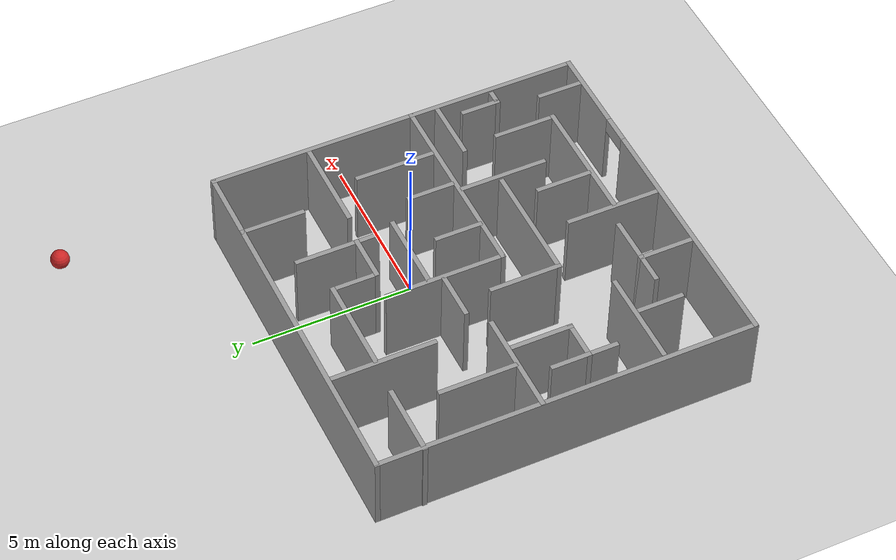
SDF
<sdf version="1.6">
 <world name="default">
  <light name="sun" type="directional">
   <pose>0 0 10 0 -0 0</pose>
   <diffuse>0.8 0.8 0.8 1</diffuse>
   <specular>0.2 0.2 0.2 1</specular>
   <attenuation>
    <range>1000</range>
    <constant>0.9</constant>
    <linear>0.01</linear>
    <quadratic>0.001</quadratic>
   </attenuation>
   <direction>-0.5 0.1 -0.9</direction>
  </light>
  <model name="ground_plane">
   <static>1</static>
   <link name="link">
    <collision name="collision">
     <geometry><plane><normal>0 0 1</normal><size>100 100</size></plane></geometry>
     <surface><friction><ode><mu>100</mu><mu2>50</mu2></ode></friction></surface>
    </collision>
    <visual name="visual">
     <cast_shadows>0</cast_shadows>
     <geometry><plane><normal>0 0 1</normal><size>100 100</size></plane></geometry>
     <material>
      <script><uri>file://media/materials/scripts/gazebo.material</uri><name>Gazebo/Grey</name></script>
     </material>
    </visual>
   </link>
  </model>
  <gravity>0 0 -9.8</gravity>
  <magnetic_field>6e-06 2.3e-05 -4.2e-05</magnetic_field>
  <atmosphere type="adiabatic"/>
  <physics name="default_physics" default="0" type="ode">
   <max_step_size>0.001</max_step_size>
   <real_time_factor>1</real_time_factor>
   <real_time_update_rate>1000</real_time_update_rate>
  </physics>
  <scene><ambient>0.4 0.4 0.4 1</ambient><background>0.7 0.7 0.7 1</background><shadows>1</shadows></scene>
  <audio><device>default</device></audio>
  <spherical_coordinates>
   <surface_model>EARTH_WGS84</surface_model>
   <latitude_deg>0</latitude_deg>
   <longitude_deg>0</longitude_deg>
   <elevation>0</elevation>
   <heading_deg>0</heading_deg>
  </spherical_coordinates>
  <model name="RoboCup SPL Ball">
   <static>0</static>
   <link name="ball">
    <inertial>
     <mass>0.0056</mass>
     <inertia>
      <ixx>2.37e-06</ixx>
      <iyy>2.37e-06</iyy>
      <izz>2.37e-06</izz>
      <ixy>0</ixy>
      <ixz>0</ixz>
      <iyz>0</iyz>
     </inertia>
    </inertial>
    <collision name="collision"><geometry><sphere><radius>0.289568</radius></sphere></geometry></collision>
    <visual name="visual">
     <geometry><sphere><radius>0.289568</radius></sphere></geometry>
     <material>
      <script><uri>file://media/materials/scripts/gazebo.material</uri><name>Gazebo/RedBright</name></script>
     </material>
    </visual>
   </link>
   <pose>5.15164 8.95935 0.289568 0 -0 0</pose>
  </model>
  <model name="mbot">
   <link name="base_footprint">
    <inertial>
     <pose>0.013077 0 0.138462 0 -0 0</pose>
     <mass>1.3</mass>
     <inertia>
      <ixx>0.0360561</ixx>
      <ixy>0</ixy>
      <ixz>-0.00121615</ixz>
      <iyy>0.0387238</iyy>
      <iyz>0</iyz>
      <izz>0.0426727</izz>
     </inertia>
    </inertial>
    <collision name="base_footprint_fixed_joint_lump__base_link_collision">
     <pose>0 0 0.11 0 -0 0</pose>
     <geometry><cylinder><length>0.16</length><radius>0.2</radius></cylinder></geometry>
    </collision>
    <collision name="base_footprint_fixed_joint_lump__camera_link_collision_1">
     <pose>0.17 0 0.21 0 -0 0</pose>
     <geometry><box><size>0.01 0.04 0.04</size></box></geometry>
    </collision>
    <collision name="base_footprint_fixed_joint_lump__pillar_link_collision_2">
     <pose>0 0 0.21 0 -0 0</pose>
     <geometry><cylinder><length>0.1</length><radius>0.01</radius></cylinder></geometry>
    </collision>
    <collision name="base_footprint_fixed_joint_lump__laser_link_collision_3">
     <pose>0 0 0.28 0 -0 0</pose>
     <geometry><cylinder><length>0.06</length><radius>0.05</radius></cylinder></geometry>
    </collision>
    <visual name="base_footprint_visual">
     <geometry><box><size>0.001 0.001 0.001</size></box></geometry>
     <material><script><uri>__default__</uri><name>__default__</name></script></material>
    </visual>
    <visual name="base_footprint_fixed_joint_lump__base_link_visual_1">
     <pose>0 0 0.11 0 -0 0</pose>
     <geometry><cylinder><length>0.16</length><radius>0.2</radius></cylinder></geometry>
     <material>
      <script><name>Gazebo/Blue</name><uri>file://media/materials/scripts/gazebo.material</uri></script>
     </material>
    </visual>
    <visual name="base_footprint_fixed_joint_lump__camera_link_visual_2">
     <pose>0.17 0 0.21 0 -0 0</pose>
     <geometry><box><size>0.01 0.04 0.04</size></box></geometry>
     <material>
      <script><name>Gazebo/Black</name><uri>file://media/materials/scripts/gazebo.material</uri></script>
     </material>
    </visual>
    <visual name="base_footprint_fixed_joint_lump__pillar_link_visual_3">
     <pose>0 0 0.21 0 -0 0</pose>
     <geometry><cylinder><length>0.1</length><radius>0.01</radius></cylinder></geometry>
    </visual>
    <visual name="base_footprint_fixed_joint_lump__laser_link_visual_4">
     <pose>0 0 0.28 0 -0 0</pose>
     <geometry><cylinder><length>0.05</length><radius>0.05</radius></cylinder></geometry>
     <material>
      <script><name>Gazebo/Black</name><uri>file://media/materials/scripts/gazebo.material</uri></script>
     </material>
    </visual>
    <sensor name="camera_node" type="camera">
     <update_rate>20</update_rate>
     <camera name="head">
      <horizontal_fov>1.39626</horizontal_fov>
      <image><width>1280</width><height>720</height><format>R8G8B8</format></image>
      <clip><near>0.02</near><far>300</far></clip>
      <noise><type>gaussian</type><mean>0</mean><stddev>0.007</stddev></noise>
     </camera>
     <plugin name="gazebo_camera" filename="libgazebo_ros_camera.so">
      <alwaysOn>1</alwaysOn>
      <updateRate>0.0</updateRate>
      <cameraName>/camera</cameraName>
      <imageTopicName>image_raw</imageTopicName>
      <cameraInfoTopicName>camera_info</cameraInfoTopicName>
      <frameName>camera_link</frameName>
      <hackBaseline>0.07</hackBaseline>
      <distortionK1>0.0</distortionK1>
      <distortionK2>0.0</distortionK2>
      <distortionK3>0.0</distortionK3>
      <distortionT1>0.0</distortionT1>
      <distortionT2>0.0</distortionT2>
      <robotNamespace>/</robotNamespace>
     </plugin>
     <pose>0.17 0 0.21 0 -0 0</pose>
    </sensor>
    <sensor name="rplidar" type="ray">
     <visualize>0</visualize>
     <update_rate>5.5</update_rate>
     <ray>
      <scan>
       <horizontal>
        <samples>360</samples>
        <resolution>1</resolution>
        <min_angle>-3</min_angle>
        <max_angle>3</max_angle>
       </horizontal>
       <vertical><samples>1</samples><min_angle>0</min_angle><max_angle>0</max_angle></vertical>
      </scan>
      <range><min>0.1</min><max>6</max><resolution>0.01</resolution></range>
      <noise><type>gaussian</type><mean>0</mean><stddev>0.01</stddev></noise>
     </ray>
     <plugin name="gazebo_rplidar" filename="libgazebo_ros_laser.so">
      <topicName>/scan</topicName>
      <frameName>laser_link</frameName>
      <robotNamespace>/</robotNamespace>
     </plugin>
     <pose>0 0 0.28 0 -0 0</pose>
    </sensor>
   </link>
   <link name="back_caster_link">
    <pose>0.18 0 0.015 0 -0 0</pose>
    <inertial>
     <mass>0.2</mass>
     <inertia><ixx>1.8e-05</ixx><ixy>0</ixy><ixz>0</ixz><iyy>1.8e-05</iyy><iyz>0</iyz><izz>1.8e-05</izz></inertia>
    </inertial>
    <collision name="back_caster_link_collision">
     <geometry><sphere><radius>0.015</radius></sphere></geometry>
    </collision>
    <visual name="back_caster_link_visual">
     <geometry><sphere><radius>0.015</radius></sphere></geometry>
     <material>
      <script><name>Gazebo/Black</name><uri>file://media/materials/scripts/gazebo.material</uri></script>
     </material>
    </visual>
   </link>
   <joint name="back_caster_joint" type="revolute">
    <child>back_caster_link</child>
    <parent>base_footprint</parent>
    <axis>
     <xyz>0 1 0</xyz>
     <limit><lower>-1e+16</lower><upper>1e+16</upper></limit>
     <dynamics><spring_reference>0</spring_reference><spring_stiffness>0</spring_stiffness></dynamics>
     <use_parent_model_frame>1</use_parent_model_frame>
    </axis>
   </joint>
   <link name="front_caster_link">
    <pose>-0.18 0 0.015 0 -0 0</pose>
    <inertial>
     <mass>0.2</mass>
     <inertia><ixx>1.8e-05</ixx><ixy>0</ixy><ixz>0</ixz><iyy>1.8e-05</iyy><iyz>0</iyz><izz>1.8e-05</izz></inertia>
    </inertial>
    <collision name="front_caster_link_collision">
     <geometry><sphere><radius>0.015</radius></sphere></geometry>
    </collision>
    <visual name="front_caster_link_visual">
     <geometry><sphere><radius>0.015</radius></sphere></geometry>
     <material>
      <script><name>Gazebo/Black</name><uri>file://media/materials/scripts/gazebo.material</uri></script>
     </material>
    </visual>
   </link>
   <joint name="front_caster_joint" type="revolute">
    <child>front_caster_link</child>
    <parent>base_footprint</parent>
    <axis>
     <xyz>0 1 0</xyz>
     <limit><lower>-1e+16</lower><upper>1e+16</upper></limit>
     <dynamics><spring_reference>0</spring_reference><spring_stiffness>0</spring_stiffness></dynamics>
     <use_parent_model_frame>1</use_parent_model_frame>
    </axis>
   </joint>
   <link name="left_wheel_link">
    <pose>0 0.19 0.06 0 -0 0</pose>
    <inertial>
     <mass>0.2</mass>
     <inertia>
      <ixx>0.000190417</ixx>
      <ixy>0</ixy>
      <ixz>0</ixz>
      <iyy>0.000190417</iyy>
      <iyz>0</iyz>
      <izz>0.00036</izz>
     </inertia>
    </inertial>
    <collision name="left_wheel_link_collision">
     <pose>0 0 0 1.5708 -0 0</pose>
     <geometry><cylinder><length>0.025</length><radius>0.06</radius></cylinder></geometry>
    </collision>
    <visual name="left_wheel_link_visual">
     <pose>0 0 0 1.5708 -0 0</pose>
     <geometry><cylinder><length>0.025</length><radius>0.06</radius></cylinder></geometry>
     <material>
      <script><name>Gazebo/Gray</name><uri>file://media/materials/scripts/gazebo.material</uri></script>
     </material>
    </visual>
   </link>
   <joint name="left_wheel_joint" type="revolute">
    <child>left_wheel_link</child>
    <parent>base_footprint</parent>
    <axis>
     <xyz>0 1 0</xyz>
     <limit><lower>-1e+16</lower><upper>1e+16</upper></limit>
     <dynamics><spring_reference>0</spring_reference><spring_stiffness>0</spring_stiffness></dynamics>
     <use_parent_model_frame>1</use_parent_model_frame>
    </axis>
   </joint>
   <link name="right_wheel_link">
    <pose>0 -0.19 0.06 0 -0 0</pose>
    <inertial>
     <mass>0.2</mass>
     <inertia>
      <ixx>0.000190417</ixx>
      <ixy>0</ixy>
      <ixz>0</ixz>
      <iyy>0.000190417</iyy>
      <iyz>0</iyz>
      <izz>0.00036</izz>
     </inertia>
    </inertial>
    <collision name="right_wheel_link_collision">
     <pose>0 0 0 1.5708 -0 0</pose>
     <geometry><cylinder><length>0.025</length><radius>0.06</radius></cylinder></geometry>
    </collision>
    <visual name="right_wheel_link_visual">
     <pose>0 0 0 1.5708 -0 0</pose>
     <geometry><cylinder><length>0.025</length><radius>0.06</radius></cylinder></geometry>
     <material>
      <script><name>Gazebo/Gray</name><uri>file://media/materials/scripts/gazebo.material</uri></script>
     </material>
    </visual>
   </link>
   <joint name="right_wheel_joint" type="revolute">
    <child>right_wheel_link</child>
    <parent>base_footprint</parent>
    <axis>
     <xyz>0 1 0</xyz>
     <limit><lower>-1e+16</lower><upper>1e+16</upper></limit>
     <dynamics><spring_reference>0</spring_reference><spring_stiffness>0</spring_stiffness></dynamics>
     <use_parent_model_frame>1</use_parent_model_frame>
    </axis>
   </joint>
   <static>0</static>
   <plugin name="differential_drive_controller" filename="libgazebo_ros_diff_drive.so">
    <rosDebugLevel>Debug</rosDebugLevel>
    <publishWheelTF>1</publishWheelTF>
    <robotNamespace>/</robotNamespace>
    <publishTf>1</publishTf>
    <publishWheelJointState>1</publishWheelJointState>
    <alwaysOn>1</alwaysOn>
    <updateRate>100.0</updateRate>
    <legacyMode>1</legacyMode>
    <leftJoint>left_wheel_joint</leftJoint>
    <rightJoint>right_wheel_joint</rightJoint>
    <wheelSeparation>0.38</wheelSeparation>
    <wheelDiameter>0.12</wheelDiameter>
    <broadcastTF>1</broadcastTF>
    <wheelTorque>30</wheelTorque>
    <wheelAcceleration>1.8</wheelAcceleration>
    <commandTopic>cmd_vel</commandTopic>
    <odometryFrame>odom</odometryFrame>
    <odometryTopic>odom</odometryTopic>
    <robotBaseFrame>base_footprint</robotBaseFrame>
   </plugin>
   <pose>0.005434 0.005912 -6e-06 2.9e-05 1e-06 0.002572</pose>
  </model>
  <model name="migong">
   <pose>-1.49161 -1.44 0 0 -0 0</pose>
   <link name="Wall_100">
    <collision name="Wall_100_Collision">
     <geometry><box><size>1.5 0.15 2.5</size></box></geometry>
     <pose>0 0 1.25 0 -0 0</pose>
    </collision>
    <visual name="Wall_100_Visual">
     <pose>0 0 1.25 0 -0 0</pose>
     <geometry><box><size>1.5 0.15 2.5</size></box></geometry>
     <material>
      <script><uri>file://media/materials/scripts/gazebo.material</uri><name>Gazebo/Grey</name></script>
      <ambient>1 1 1 1</ambient>
     </material>
     <meta><layer>0</layer></meta>
    </visual>
    <pose>0.950852 0.184929 0 0 -0 1.5708</pose>
   </link>
   <link name="Wall_102">
    <collision name="Wall_102_Collision">
     <geometry><box><size>1.5 0.15 2.5</size></box></geometry>
     <pose>0 0 1.25 0 -0 0</pose>
    </collision>
    <visual name="Wall_102_Visual">
     <pose>0 0 1.25 0 -0 0</pose>
     <geometry><box><size>1.5 0.15 2.5</size></box></geometry>
     <material>
      <script><uri>file://media/materials/scripts/gazebo.material</uri><name>Gazebo/Grey</name></script>
      <ambient>1 1 1 1</ambient>
     </material>
     <meta><layer>0</layer></meta>
    </visual>
    <pose>-1.19244 1.32015 0 0 -0 3.14159</pose>
   </link>
   <link name="Wall_104">
    <collision name="Wall_104_Collision">
     <geometry><box><size>1.75 0.15 2.5</size></box></geometry>
     <pose>0 0 1.25 0 -0 0</pose>
    </collision>
    <visual name="Wall_104_Visual">
     <pose>0 0 1.25 0 -0 0</pose>
     <geometry><box><size>1.75 0.15 2.5</size></box></geometry>
     <material>
      <script><uri>file://media/materials/scripts/gazebo.material</uri><name>Gazebo/Grey</name></script>
      <ambient>1 1 1 1</ambient>
     </material>
     <meta><layer>0</layer></meta>
    </visual>
    <pose>1.42583 -3.4373 0 0 -0 1.5708</pose>
   </link>
   <link name="Wall_15">
    <pose>0.016606 -5.8 0 0 -0 0</pose>
    <visual name="Wall_15_Visual_0">
     <pose>-1.78008 0 1.25 0 -0 0</pose>
     <geometry><box><size>7.93985 0.15 2.5</size></box></geometry>
     <material>
      <script><uri>file://media/materials/scripts/gazebo.material</uri><name>Gazebo/Grey</name></script>
      <ambient>1 1 1 1</ambient>
     </material>
     <meta><layer>0</layer></meta>
    </visual>
    <collision name="Wall_15_Collision_0">
     <geometry><box><size>7.93985 0.15 2.5</size></box></geometry>
     <pose>-1.78008 0 1.25 0 -0 0</pose>
    </collision>
    <visual name="Wall_15_Visual_1">
     <pose>4.41992 0 1.25 0 -0 0</pose>
     <geometry><box><size>2.66015 0.15 2.5</size></box></geometry>
     <material>
      <script><uri>file://media/materials/scripts/gazebo.material</uri><name>Gazebo/Grey</name></script>
      <ambient>1 1 1 1</ambient>
     </material>
     <meta><layer>0</layer></meta>
    </visual>
    <collision name="Wall_15_Collision_1">
     <geometry><box><size>2.66015 0.15 2.5</size></box></geometry>
     <pose>4.41992 0 1.25 0 -0 0</pose>
    </collision>
    <visual name="Wall_15_Visual_2">
     <pose>2.63985 0 2.25 0 -0 0</pose>
     <geometry><box><size>0.9 0.15 0.5</size></box></geometry>
     <material>
      <script><uri>file://media/materials/scripts/gazebo.material</uri><name>Gazebo/Grey</name></script>
      <ambient>1 1 1 1</ambient>
     </material>
     <meta><layer>0</layer></meta>
    </visual>
    <collision name="Wall_15_Collision_2">
     <geometry><box><size>0.9 0.15 0.5</size></box></geometry>
     <pose>2.63985 0 2.25 0 -0 0</pose>
    </collision>
   </link>
   <link name="Wall_16">
    <collision name="Wall_16_Collision">
     <geometry><box><size>5.4 0.15 2.5</size></box></geometry>
     <pose>0 0 1.25 0 -0 0</pose>
    </collision>
    <visual name="Wall_16_Visual">
     <pose>0 0 1.25 0 -0 0</pose>
     <geometry><box><size>5.4 0.15 2.5</size></box></geometry>
     <material>
      <script><uri>file://media/materials/scripts/gazebo.material</uri><name>Gazebo/Grey</name></script>
      <ambient>1 1 1 1</ambient>
     </material>
     <meta><layer>0</layer></meta>
    </visual>
    <pose>5.69161 -3.175 0 0 -0 1.5708</pose>
   </link>
   <link name="Wall_18">
    <collision name="Wall_18_Collision">
     <geometry><box><size>3.75 0.15 2.5</size></box></geometry>
     <pose>0 0 1.25 0 -0 0</pose>
    </collision>
    <visual name="Wall_18_Visual">
     <pose>0 0 1.25 0 -0 0</pose>
     <geometry><box><size>3.75 0.15 2.5</size></box></geometry>
     <material>
      <script><uri>file://media/materials/scripts/gazebo.material</uri><name>Gazebo/Grey</name></script>
      <ambient>1 1 1 1</ambient>
     </material>
     <meta><layer>0</layer></meta>
    </visual>
    <pose>-0.408394 1.25 0 0 -0 1.5708</pose>
   </link>
   <link name="Wall_20">
    <collision name="Wall_20_Collision">
     <geometry><box><size>2.75 0.15 2.5</size></box></geometry>
     <pose>0 0 1.25 0 -0 0</pose>
    </collision>
    <visual name="Wall_20_Visual">
     <pose>0 0 1.25 0 -0 0</pose>
     <geometry><box><size>2.75 0.15 2.5</size></box></geometry>
     <material>
      <script><uri>file://media/materials/scripts/gazebo.material</uri><name>Gazebo/Grey</name></script>
      <ambient>1 1 1 1</ambient>
     </material>
     <meta><layer>0</layer></meta>
    </visual>
    <pose>2.3936 -1.9586 0 0 -0 -1.5708</pose>
   </link>
   <link name="Wall_25">
    <collision name="Wall_25_Collision">
     <geometry><box><size>2.5 0.15 2.5</size></box></geometry>
     <pose>0 0 1.25 0 -0 0</pose>
    </collision>
    <visual name="Wall_25_Visual">
     <pose>0 0 1.25 0 -0 0</pose>
     <geometry><box><size>2.5 0.15 2.5</size></box></geometry>
     <material>
      <script><uri>file://media/materials/scripts/gazebo.material</uri><name>Gazebo/Grey</name></script>
      <ambient>1 1 1 1</ambient>
     </material>
     <meta><layer>0</layer></meta>
    </visual>
    <pose>0.841365 1.75372 0 0 -0 0</pose>
   </link>
   <link name="Wall_29">
    <collision name="Wall_29_Collision">
     <geometry><box><size>2 0.15 2.5</size></box></geometry>
     <pose>0 0 1.25 0 -0 0</pose>
    </collision>
    <visual name="Wall_29_Visual">
     <pose>0 0 1.25 0 -0 0</pose>
     <geometry><box><size>2 0.15 2.5</size></box></geometry>
     <material>
      <script><uri>file://media/materials/scripts/gazebo.material</uri><name>Gazebo/Grey</name></script>
      <ambient>1 1 1 1</ambient>
     </material>
     <meta><layer>0</layer></meta>
    </visual>
    <pose>3.51742 4.86499 0 0 -0 -1.5708</pose>
   </link>
   <link name="Wall_3">
    <collision name="Wall_3_Collision">
     <geometry><box><size>6.25 0.15 2.5</size></box></geometry>
     <pose>0 0 1.25 0 -0 0</pose>
    </collision>
    <visual name="Wall_3_Visual">
     <pose>0 0 1.25 0 -0 0</pose>
     <geometry><box><size>6.25 0.15 2.5</size></box></geometry>
     <material>
      <script><uri>file://media/materials/scripts/gazebo.material</uri><name>Gazebo/Grey</name></script>
      <ambient>1 1 1 1</ambient>
     </material>
     <meta><layer>0</layer></meta>
    </visual>
    <pose>2.64161 -0.55 0 0 -0 0</pose>
   </link>
   <link name="Wall_31">
    <collision name="Wall_31_Collision">
     <geometry><box><size>3.25 0.15 2.5</size></box></geometry>
     <pose>0 0 1.25 0 -0 0</pose>
    </collision>
    <visual name="Wall_31_Visual">
     <pose>0 0 1.25 0 -0 0</pose>
     <geometry><box><size>3.25 0.15 2.5</size></box></geometry>
     <material>
      <script><uri>file://media/materials/scripts/gazebo.material</uri><name>Gazebo/Grey</name></script>
      <ambient>1 1 1 1</ambient>
     </material>
     <meta><layer>0</layer></meta>
    </visual>
    <pose>-4.08756 0.830504 0 0 -0 0</pose>
   </link>
   <link name="Wall_33">
    <collision name="Wall_33_Collision">
     <geometry><box><size>3.25 0.15 2.5</size></box></geometry>
     <pose>0 0 1.25 0 -0 0</pose>
    </collision>
    <visual name="Wall_33_Visual">
     <pose>0 0 1.25 0 -0 0</pose>
     <geometry><box><size>3.25 0.15 2.5</size></box></geometry>
     <material>
      <script><uri>file://media/materials/scripts/gazebo.material</uri><name>Gazebo/Grey</name></script>
      <ambient>1 1 1 1</ambient>
     </material>
     <meta><layer>0</layer></meta>
    </visual>
    <pose>-2.47393 4.11899 0 0 -0 -1.5708</pose>
   </link>
   <link name="Wall_35">
    <collision name="Wall_35_Collision">
     <geometry><box><size>3 0.15 2.5</size></box></geometry>
     <pose>0 0 1.25 0 -0 0</pose>
    </collision>
    <visual name="Wall_35_Visual">
     <pose>0 0 1.25 0 -0 0</pose>
     <geometry><box><size>3 0.15 2.5</size></box></geometry>
     <material>
      <script><uri>file://media/materials/scripts/gazebo.material</uri><name>Gazebo/Grey</name></script>
      <ambient>1 1 1 1</ambient>
     </material>
     <meta><layer>0</layer></meta>
    </visual>
    <pose>-4.07299 -2.98446 0 0 -0 0</pose>
   </link>
   <link name="Wall_37">
    <collision name="Wall_37_Collision">
     <geometry><box><size>2.5 0.15 2.5</size></box></geometry>
     <pose>0 0 1.25 0 -0 0</pose>
    </collision>
    <visual name="Wall_37_Visual">
     <pose>0 0 1.25 0 -0 0</pose>
     <geometry><box><size>2.5 0.15 2.5</size></box></geometry>
     <material>
      <script><uri>file://media/materials/scripts/gazebo.material</uri><name>Gazebo/Grey</name></script>
      <ambient>1 1 1 1</ambient>
     </material>
     <meta><layer>0</layer></meta>
    </visual>
    <pose>-4.14879 2.0055 0 0 -0 1.5708</pose>
   </link>
   <link name="Wall_39">
    <collision name="Wall_39_Collision">
     <geometry><box><size>3 0.15 2.5</size></box></geometry>
     <pose>0 0 1.25 0 -0 0</pose>
    </collision>
    <visual name="Wall_39_Visual">
     <pose>0 0 1.25 0 -0 0</pose>
     <geometry><box><size>3 0.15 2.5</size></box></geometry>
     <material>
      <script><uri>file://media/materials/scripts/gazebo.material</uri><name>Gazebo/Grey</name></script>
      <ambient>1 1 1 1</ambient>
     </material>
     <meta><layer>0</layer></meta>
    </visual>
    <pose>-0.054688 -4.30437 0 0 -0 1.5708</pose>
   </link>
   <link name="Wall_4">
    <collision name="Wall_4_Collision">
     <geometry><box><size>6.5 0.15 2.5</size></box></geometry>
     <pose>0 0 1.25 0 -0 0</pose>
    </collision>
    <visual name="Wall_4_Visual">
     <pose>0 0 1.25 0 -0 0</pose>
     <geometry><box><size>6.5 0.15 2.5</size></box></geometry>
     <material>
      <script><uri>file://media/materials/scripts/gazebo.material</uri><name>Gazebo/Grey</name></script>
      <ambient>1 1 1 1</ambient>
     </material>
     <meta><layer>0</layer></meta>
    </visual>
    <pose>5.69161 2.625 0 0 -0 1.5708</pose>
   </link>
   <link name="Wall_41">
    <collision name="Wall_41_Collision">
     <geometry><box><size>3.75 0.15 2.5</size></box></geometry>
     <pose>0 0 1.25 0 -0 0</pose>
    </collision>
    <visual name="Wall_41_Visual">
     <pose>0 0 1.25 0 -0 0</pose>
     <geometry><box><size>3.75 0.15 2.5</size></box></geometry>
     <material>
      <script><uri>file://media/materials/scripts/gazebo.material</uri><name>Gazebo/Grey</name></script>
      <ambient>1 1 1 1</ambient>
     </material>
     <meta><layer>0</layer></meta>
    </visual>
    <pose>0.37846 -1.82136 0 0 -0 3.14159</pose>
   </link>
   <link name="Wall_42">
    <collision name="Wall_42_Collision">
     <geometry><box><size>2.25 0.15 2.5</size></box></geometry>
     <pose>0 0 1.25 0 -0 0</pose>
    </collision>
    <visual name="Wall_42_Visual">
     <pose>0 0 1.25 0 -0 0</pose>
     <geometry><box><size>2.25 0.15 2.5</size></box></geometry>
     <material>
      <script><uri>file://media/materials/scripts/gazebo.material</uri><name>Gazebo/Grey</name></script>
      <ambient>1 1 1 1</ambient>
     </material>
     <meta><layer>0</layer></meta>
    </visual>
    <pose>-1.42154 -0.771359 0 0 -0 1.5708</pose>
   </link>
   <link name="Wall_44">
    <collision name="Wall_44_Collision">
     <geometry><box><size>4 0.15 2.5</size></box></geometry>
     <pose>0 0 1.25 0 -0 0</pose>
    </collision>
    <visual name="Wall_44_Visual">
     <pose>0 0 1.25 0 -0 0</pose>
     <geometry><box><size>4 0.15 2.5</size></box></geometry>
     <material>
      <script><uri>file://media/materials/scripts/gazebo.material</uri><name>Gazebo/Grey</name></script>
      <ambient>1 1 1 1</ambient>
     </material>
     <meta><layer>0</layer></meta>
    </visual>
    <pose>1.96577 -4.34396 0 0 -0 0</pose>
   </link>
   <link name="Wall_45">
    <collision name="Wall_45_Collision">
     <geometry><box><size>2 0.15 2.5</size></box></geometry>
     <pose>0 0 1.25 0 -0 0</pose>
    </collision>
    <visual name="Wall_45_Visual">
     <pose>0 0 1.25 0 -0 0</pose>
     <geometry><box><size>2 0.15 2.5</size></box></geometry>
     <material>
      <script><uri>file://media/materials/scripts/gazebo.material</uri><name>Gazebo/Grey</name></script>
      <ambient>1 1 1 1</ambient>
     </material>
     <meta><layer>0</layer></meta>
    </visual>
    <pose>3.89077 -3.41896 0 0 -0 1.5708</pose>
   </link>
   <link name="Wall_52">
    <collision name="Wall_52_Collision">
     <geometry><box><size>1.5 0.15 2.5</size></box></geometry>
     <pose>0 0 1.25 0 -0 0</pose>
    </collision>
    <visual name="Wall_52_Visual">
     <pose>0 0 1.25 0 -0 0</pose>
     <geometry><box><size>1.5 0.15 2.5</size></box></geometry>
     <material>
      <script><uri>file://media/materials/scripts/gazebo.material</uri><name>Gazebo/Grey</name></script>
      <ambient>1 1 1 1</ambient>
     </material>
     <meta><layer>0</layer></meta>
    </visual>
    <pose>-3.84477 -3.76819 0 0 -0 -1.5708</pose>
   </link>
   <link name="Wall_55">
    <collision name="Wall_55_Collision">
     <geometry><box><size>3 0.15 2.5</size></box></geometry>
     <pose>0 0 1.25 0 -0 0</pose>
    </collision>
    <visual name="Wall_55_Visual">
     <pose>0 0 1.25 0 -0 0</pose>
     <geometry><box><size>3 0.15 2.5</size></box></geometry>
     <material>
      <script><uri>file://media/materials/scripts/gazebo.material</uri><name>Gazebo/Grey</name></script>
      <ambient>1 1 1 1</ambient>
     </material>
     <meta><layer>0</layer></meta>
    </visual>
    <pose>-0.966836 4.33549 0 0 -0 0</pose>
   </link>
   <link name="Wall_56">
    <collision name="Wall_56_Collision">
     <geometry><box><size>1.5 0.15 2.5</size></box></geometry>
     <pose>0 0 1.25 0 -0 0</pose>
    </collision>
    <visual name="Wall_56_Visual">
     <pose>0 0 1.25 0 -0 0</pose>
     <geometry><box><size>1.5 0.15 2.5</size></box></geometry>
     <material>
      <script><uri>file://media/materials/scripts/gazebo.material</uri><name>Gazebo/Grey</name></script>
      <ambient>1 1 1 1</ambient>
     </material>
     <meta><layer>0</layer></meta>
    </visual>
    <pose>0.458164 3.66048 0 0 -0 -1.5708</pose>
   </link>
   <link name="Wall_57">
    <collision name="Wall_57_Collision">
     <geometry><box><size>1.5 0.15 2.5</size></box></geometry>
     <pose>0 0 1.25 0 -0 0</pose>
    </collision>
    <visual name="Wall_57_Visual">
     <pose>0 0 1.25 0 -0 0</pose>
     <geometry><box><size>1.5 0.15 2.5</size></box></geometry>
     <material>
      <script><uri>file://media/materials/scripts/gazebo.material</uri><name>Gazebo/Grey</name></script>
      <ambient>1 1 1 1</ambient>
     </material>
     <meta><layer>0</layer></meta>
    </visual>
    <pose>1.13316 2.98548 0 0 -0 0</pose>
   </link>
   <link name="Wall_59">
    <collision name="Wall_59_Collision">
     <geometry><box><size>2.5 0.15 2.5</size></box></geometry>
     <pose>0 0 1.25 0 -0 0</pose>
    </collision>
    <visual name="Wall_59_Visual">
     <pose>0 0 1.25 0 -0 0</pose>
     <geometry><box><size>2.5 0.15 2.5</size></box></geometry>
     <material>
      <script><uri>file://media/materials/scripts/gazebo.material</uri><name>Gazebo/Grey</name></script>
      <ambient>1 1 1 1</ambient>
     </material>
     <meta><layer>0</layer></meta>
    </visual>
    <pose>4.04588 0.761351 0 0 -0 1.5708</pose>
   </link>
   <link name="Wall_61">
    <collision name="Wall_61_Collision">
     <geometry><box><size>2 0.15 2.5</size></box></geometry>
     <pose>0 0 1.25 0 -0 0</pose>
    </collision>
    <visual name="Wall_61_Visual">
     <pose>0 0 1.25 0 -0 0</pose>
     <geometry><box><size>2 0.15 2.5</size></box></geometry>
     <material>
      <script><uri>file://media/materials/scripts/gazebo.material</uri><name>Gazebo/Grey</name></script>
      <ambient>1 1 1 1</ambient>
     </material>
     <meta><layer>0</layer></meta>
    </visual>
    <pose>-3.55274 -0.177749 0 0 -0 -1.5708</pose>
   </link>
   <link name="Wall_62">
    <collision name="Wall_62_Collision">
     <geometry><box><size>1.25 0.15 2.5</size></box></geometry>
     <pose>0 0 1.25 0 -0 0</pose>
    </collision>
    <visual name="Wall_62_Visual">
     <pose>0 0 1.25 0 -0 0</pose>
     <geometry><box><size>1.25 0.15 2.5</size></box></geometry>
     <material>
      <script><uri>file://media/materials/scripts/gazebo.material</uri><name>Gazebo/Grey</name></script>
      <ambient>1 1 1 1</ambient>
     </material>
     <meta><layer>0</layer></meta>
    </visual>
    <pose>-4.10274 -1.10275 0 0 -0 3.14159</pose>
   </link>
   <link name="Wall_64">
    <collision name="Wall_64_Collision">
     <geometry><box><size>1 0.15 2.5</size></box></geometry>
     <pose>0 0 1.25 0 -0 0</pose>
    </collision>
    <visual name="Wall_64_Visual">
     <pose>0 0 1.25 0 -0 0</pose>
     <geometry><box><size>1 0.15 2.5</size></box></geometry>
     <material>
      <script><uri>file://media/materials/scripts/gazebo.material</uri><name>Gazebo/Grey</name></script>
      <ambient>1 1 1 1</ambient>
     </material>
     <meta><layer>0</layer></meta>
    </visual>
    <pose>-4.65273 -1.52775 0 0 -0 -1.5708</pose>
   </link>
   <link name="Wall_66">
    <collision name="Wall_66_Collision">
     <geometry><box><size>1.25 0.15 2.5</size></box></geometry>
     <pose>0 0 1.25 0 -0 0</pose>
    </collision>
    <visual name="Wall_66_Visual">
     <pose>0 0 1.25 0 -0 0</pose>
     <geometry><box><size>1.25 0.15 2.5</size></box></geometry>
     <material>
      <script><uri>file://media/materials/scripts/gazebo.material</uri><name>Gazebo/Grey</name></script>
      <ambient>1 1 1 1</ambient>
     </material>
     <meta><layer>0</layer></meta>
    </visual>
    <pose>-4.65273 -0.552749 0 0 -0 1.5708</pose>
   </link>
   <link name="Wall_70">
    <collision name="Wall_70_Collision">
     <geometry><box><size>2.25 0.15 2.5</size></box></geometry>
     <pose>0 0 1.25 0 -0 0</pose>
    </collision>
    <visual name="Wall_70_Visual">
     <pose>0 0 1.25 0 -0 0</pose>
     <geometry><box><size>2.25 0.15 2.5</size></box></geometry>
     <material>
      <script><uri>file://media/materials/scripts/gazebo.material</uri><name>Gazebo/Grey</name></script>
      <ambient>1 1 1 1</ambient>
     </material>
     <meta><layer>0</layer></meta>
    </visual>
    <pose>-4.64161 4.39496 0 0 -0 0</pose>
   </link>
   <link name="Wall_72">
    <collision name="Wall_72_Collision">
     <geometry><box><size>1.75 0.15 2.5</size></box></geometry>
     <pose>0 0 1.25 0 -0 0</pose>
    </collision>
    <visual name="Wall_72_Visual">
     <pose>0 0 1.25 0 -0 0</pose>
     <geometry><box><size>1.75 0.15 2.5</size></box></geometry>
     <material>
      <script><uri>file://media/materials/scripts/gazebo.material</uri><name>Gazebo/Grey</name></script>
      <ambient>1 1 1 1</ambient>
     </material>
     <meta><layer>0</layer></meta>
    </visual>
    <pose>-2.11864 -4.90272 0 0 -0 1.5708</pose>
   </link>
   <link name="Wall_75">
    <collision name="Wall_75_Collision">
     <geometry><box><size>1.5 0.15 2.5</size></box></geometry>
     <pose>0 0 1.25 0 -0 0</pose>
    </collision>
    <visual name="Wall_75_Visual">
     <pose>0 0 1.25 0 -0 0</pose>
     <geometry><box><size>1.5 0.15 2.5</size></box></geometry>
     <material>
      <script><uri>file://media/materials/scripts/gazebo.material</uri><name>Gazebo/Grey</name></script>
      <ambient>1 1 1 1</ambient>
     </material>
     <meta><layer>0</layer></meta>
    </visual>
    <pose>-1.44364 -4.10272 0 0 -0 0</pose>
   </link>
   <link name="Wall_77">
    <collision name="Wall_77_Collision">
     <geometry><box><size>1 0.15 2.5</size></box></geometry>
     <pose>0 0 1.25 0 -0 0</pose>
    </collision>
    <visual name="Wall_77_Visual">
     <pose>0 0 1.25 0 -0 0</pose>
     <geometry><box><size>1 0.15 2.5</size></box></geometry>
     <material>
      <script><uri>file://media/materials/scripts/gazebo.material</uri><name>Gazebo/Grey</name></script>
      <ambient>1 1 1 1</ambient>
     </material>
     <meta><layer>0</layer></meta>
    </visual>
    <pose>-2.54364 -4.10272 0 0 -0 3.14159</pose>
   </link>
   <link name="Wall_8">
    <collision name="Wall_8_Collision">
     <geometry><box><size>11.5 0.15 2.5</size></box></geometry>
     <pose>0 0 1.25 0 -0 0</pose>
    </collision>
    <visual name="Wall_8_Visual">
     <pose>0 0 1.25 0 -0 0</pose>
     <geometry><box><size>11.5 0.15 2.5</size></box></geometry>
     <material>
      <script><uri>file://media/materials/scripts/gazebo.material</uri><name>Gazebo/Grey</name></script>
      <ambient>1 1 1 1</ambient>
     </material>
     <meta><layer>0</layer></meta>
    </visual>
    <pose>0.016606 5.8 0 0 -0 3.14159</pose>
   </link>
   <link name="Wall_80">
    <collision name="Wall_80_Collision">
     <geometry><box><size>2 0.15 2.5</size></box></geometry>
     <pose>0 0 1.25 0 -0 0</pose>
    </collision>
    <visual name="Wall_80_Visual">
     <pose>0 0 1.25 0 -0 0</pose>
     <geometry><box><size>2 0.15 2.5</size></box></geometry>
     <material>
      <script><uri>file://media/materials/scripts/gazebo.material</uri><name>Gazebo/Grey</name></script>
      <ambient>1 1 1 1</ambient>
     </material>
     <meta><layer>0</layer></meta>
    </visual>
    <pose>1.80816 3.91048 0 0 -0 1.5708</pose>
   </link>
   <link name="Wall_82">
    <collision name="Wall_82_Collision">
     <geometry><box><size>0.75 0.15 2.5</size></box></geometry>
     <pose>0 0 1.25 0 -0 0</pose>
    </collision>
    <visual name="Wall_82_Visual">
     <pose>0 0 1.25 0 -0 0</pose>
     <geometry><box><size>0.75 0.15 2.5</size></box></geometry>
     <material>
      <script><uri>file://media/materials/scripts/gazebo.material</uri><name>Gazebo/Grey</name></script>
      <ambient>1 1 1 1</ambient>
     </material>
     <meta><layer>0</layer></meta>
    </visual>
    <pose>1.80816 2.68548 0 0 -0 -1.5708</pose>
   </link>
   <link name="Wall_86">
    <collision name="Wall_86_Collision">
     <geometry><box><size>2 0.15 2.5</size></box></geometry>
     <pose>0 0 1.25 0 -0 0</pose>
    </collision>
    <visual name="Wall_86_Visual">
     <pose>0 0 1.25 0 -0 0</pose>
     <geometry><box><size>2 0.15 2.5</size></box></geometry>
     <material>
      <script><uri>file://media/materials/scripts/gazebo.material</uri><name>Gazebo/Grey</name></script>
      <ambient>1 1 1 1</ambient>
     </material>
     <meta><layer>0</layer></meta>
    </visual>
    <pose>4.69455 -1.35756 0 0 -0 3.14159</pose>
   </link>
   <link name="Wall_88">
    <collision name="Wall_88_Collision">
     <geometry><box><size>0.5 0.15 2.5</size></box></geometry>
     <pose>0 0 1.25 0 -0 0</pose>
    </collision>
    <visual name="Wall_88_Visual">
     <pose>0 0 1.25 0 -0 0</pose>
     <geometry><box><size>0.5 0.15 2.5</size></box></geometry>
     <material>
      <script><uri>file://media/materials/scripts/gazebo.material</uri><name>Gazebo/Grey</name></script>
      <ambient>1 1 1 1</ambient>
     </material>
     <meta><layer>0</layer></meta>
    </visual>
    <pose>5.32481 -3.11434 0 0 -0 3.14159</pose>
   </link>
   <link name="Wall_89">
    <collision name="Wall_89_Collision">
     <geometry><box><size>1.25 0.15 2.5</size></box></geometry>
     <pose>0 0 1.25 0 -0 0</pose>
    </collision>
    <visual name="Wall_89_Visual">
     <pose>0 0 1.25 0 -0 0</pose>
     <geometry><box><size>1.25 0.15 2.5</size></box></geometry>
     <material>
      <script><uri>file://media/materials/scripts/gazebo.material</uri><name>Gazebo/Grey</name></script>
      <ambient>1 1 1 1</ambient>
     </material>
     <meta><layer>0</layer></meta>
    </visual>
    <pose>5.14981 -2.56434 0 0 -0 1.5708</pose>
   </link>
   <link name="Wall_9">
    <collision name="Wall_9_Collision">
     <geometry><box><size>11.75 0.15 2.5</size></box></geometry>
     <pose>0 0 1.25 0 -0 0</pose>
    </collision>
    <visual name="Wall_9_Visual">
     <pose>0 0 1.25 0 -0 0</pose>
     <geometry><box><size>11.75 0.15 2.5</size></box></geometry>
     <material>
      <script><uri>file://media/materials/scripts/gazebo.material</uri><name>Gazebo/Grey</name></script>
      <ambient>1 1 1 1</ambient>
     </material>
     <meta><layer>0</layer></meta>
    </visual>
    <pose>-5.65839 0 0 0 -0 -1.5708</pose>
   </link>
   <link name="Wall_91">
    <collision name="Wall_91_Collision">
     <geometry><box><size>1.5 0.15 2.5</size></box></geometry>
     <pose>0 0 1.25 0 -0 0</pose>
    </collision>
    <visual name="Wall_91_Visual">
     <pose>0 0 1.25 0 -0 0</pose>
     <geometry><box><size>1.5 0.15 2.5</size></box></geometry>
     <material>
      <script><uri>file://media/materials/scripts/gazebo.material</uri><name>Gazebo/Grey</name></script>
      <ambient>1 1 1 1</ambient>
     </material>
     <meta><layer>0</layer></meta>
    </visual>
    <pose>4.81101 -5.06914 0 0 -0 1.5708</pose>
   </link>
   <link name="Wall_94">
    <collision name="Wall_94_Collision">
     <geometry><box><size>3 0.15 2.5</size></box></geometry>
     <pose>0 0 1.25 0 -0 0</pose>
    </collision>
    <visual name="Wall_94_Visual">
     <pose>0 0 1.25 0 -0 0</pose>
     <geometry><box><size>3 0.15 2.5</size></box></geometry>
     <material>
      <script><uri>file://media/materials/scripts/gazebo.material</uri><name>Gazebo/Grey</name></script>
      <ambient>1 1 1 1</ambient>
     </material>
     <meta><layer>0</layer></meta>
    </visual>
    <pose>4.21461 2.80345 0 0 -0 3.14159</pose>
   </link>
   <link name="Wall_98">
    <collision name="Wall_98_Collision">
     <geometry><box><size>1.5 0.15 2.5</size></box></geometry>
     <pose>0 0 1.25 0 -0 0</pose>
    </collision>
    <visual name="Wall_98_Visual">
     <pose>0 0 1.25 0 -0 0</pose>
     <geometry><box><size>1.5 0.15 2.5</size></box></geometry>
     <material>
      <script><uri>file://media/materials/scripts/gazebo.material</uri><name>Gazebo/Grey</name></script>
      <ambient>1 1 1 1</ambient>
     </material>
     <meta><layer>0</layer></meta>
    </visual>
    <pose>2.6998 0.245611 0 0 -0 1.5708</pose>
   </link>
   <static>1</static>
  </model>
 </world>
</sdf>
